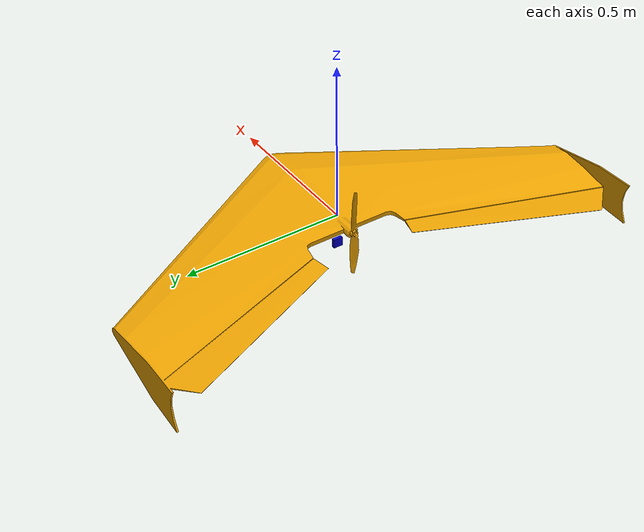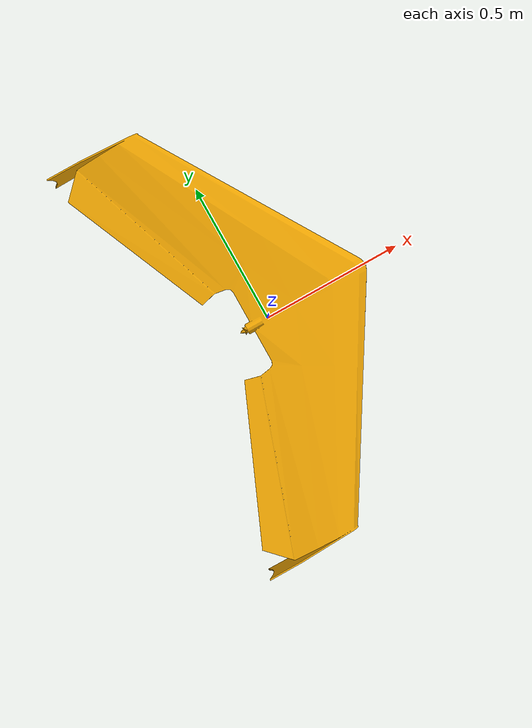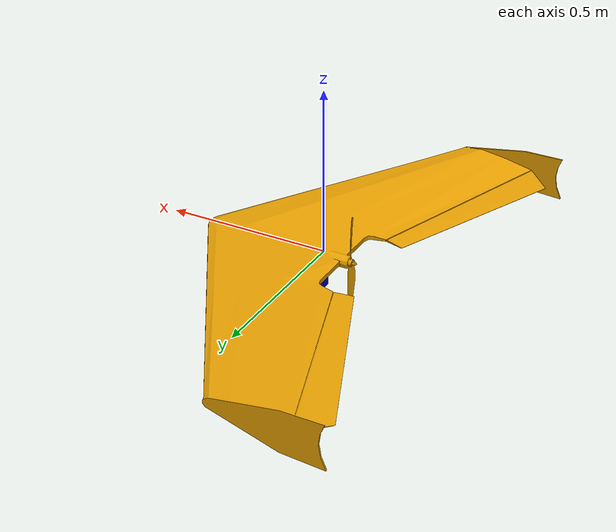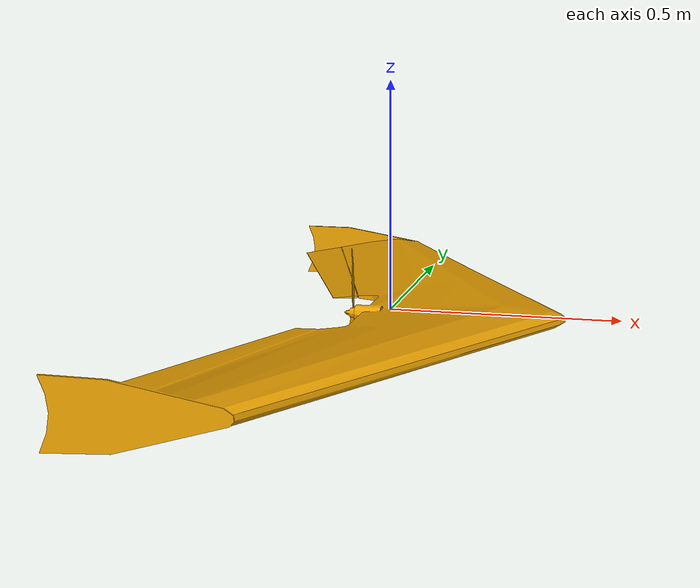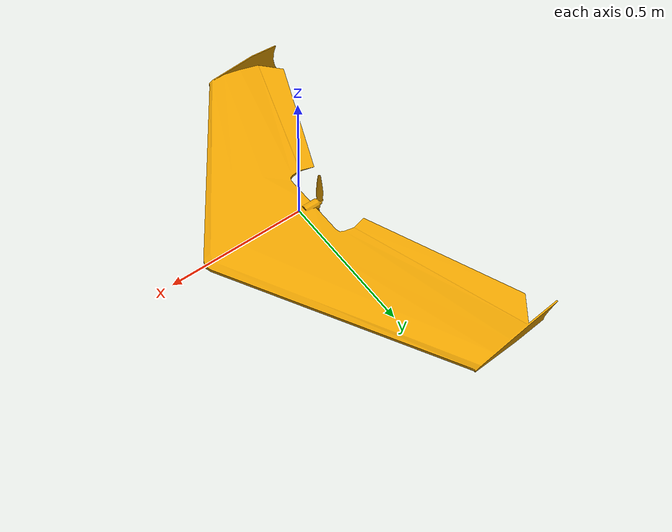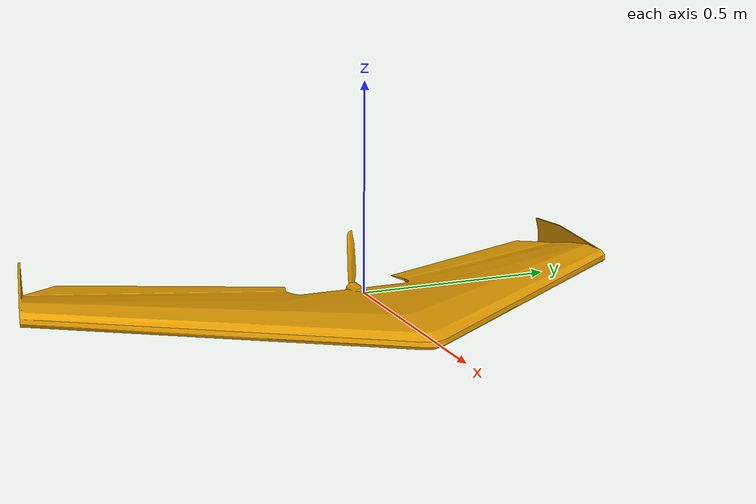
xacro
<?xml version="1.0"?>

<robot name="fixedwing" xmlns:xacro="http://www.ros.org/wiki/xacro">
  <!-- Properties -->
  <xacro:property name="wind_speed_topic" value="gazebo/wind_speed"/>
  <xacro:property name="command_topic" value="command"/>
  <xacro:property name="mesh_file" value="package://dist_project/urdf/meshes/fixedwing.dae"/>
  <xacro:property name="body_width" value="1.54"/>
  <xacro:property name="body_height" value="0.77" />
  <xacro:property name="body_length" value="0.20"/>
  <xacro:property name="mass" value="1.5"/>
  <xacro:property name="Jx" value="0.1147"/>
  <xacro:property name="Jy" value="0.0576"/>
  <xacro:property name="Jz" value="0.1712"/>
  <xacro:property name="Jxz" value="0.0015"/>

  <material name="Blue">
    <color rgba="0.0 0.0 0.8 1.0"/>
  </material>

  <xacro:property name="M_PI" value="3.1415926535897931" />

  <!-- Property Blocks -->
  <xacro:property name="empty_inertia">
    <inertia ixx="0.0001" ixy="0.0" ixz="0.0" iyy="0.0001" iyz="0.0" izz="0.001" />
  </xacro:property>

  <!-- Instantiate Link and Visual -->
  <link name="base_link">
    <inertial>
      <mass value="${mass}" />
      <origin xyz="0 0 0" />
      <inertia ixx="${Jx}" ixy="0.00" ixz="${Jxz}" iyy="${Jy}" iyz="0.00" izz="${Jz}" />
    </inertial>
    <visual name="plane_visual">
      <origin xyz="0 0 0" rpy="0 0 1.570796" />
      <geometry>
        <mesh filename="${mesh_file}">
            <submesh name="Wing" center="true" />
        </mesh>
      </geometry>
    </visual>
    <collision name="plane_collision">
      <origin xyz="0 0 0" rpy="0 0 1.570796" />
      <geometry>
        <box size="${body_width} ${body_height} ${body_length}" />
      </geometry>
    </collision>
  </link>

  <gazebo>
    <plugin name="vertical_lift" filename="libgazebo_ros_force.so">
      <bodyName>base_link</bodyName>
      <force>0 0 0</force>
      <topicName>vertical_lift_force</topicName>
    </plugin>
  </gazebo>

    <!-- GPS -->
  <xacro:include filename="$(find dist_project)/urdf/GPS.xacro"/>
  <xacro:gps_plugin_macro
    parent_link="base_link">
  </xacro:gps_plugin_macro>

  <!-- CAMERA DEFINITION -->

<link name="camera_link">
    <visual>
        <origin xyz="0 0 0" rpy="0 0 0" />
        <geometry>
            <box size="0.01 0.03 0.03" />
        </geometry>
        <material name="Blue" />
    </visual>
</link>

<joint name="camera_optical_joint" type="fixed">
    <parent link="camera_link" />
    <child link="camera_optical_link" />
    <origin xyz="0 0 0" rpy="0 0 0" /> <!-- Adjusted to face down -->
</joint>

<link name="camera_optical_link"></link>

<joint name="camera_joint" type="fixed">
    <parent link="base_link"/>
    <child link="camera_link"/>
    <origin xyz="0 0 -0.1" rpy="0 0 0"/> <!-- Positioning below the drone base -->
</joint>

<gazebo reference="camera_link">
    <material>Gazebo/Blue</material>

    <sensor name="camera" type="camera">
        <pose> 0 0 0 0 ${M_PI/2} 0 </pose>
        <visualize>true</visualize>
        <update_rate>30</update_rate>
        <camera>
            <horizontal_fov>2</horizontal_fov>
            <image>
                <format>R8G8B8</format>
                <width>640</width>
                <height>480</height>
            </image>
            <clip>
                <near>0.05</near>
                <far>8.00</far>
            </clip>
            <noise>
                <type>gaussian</type>
                <mean>0.0</mean>
                <stddev>0.07</stddev>
            </noise>
        </camera>
        <plugin name="camera_controller" filename="libgazebo_ros_camera.so">
            <frame_name>camera_optical_link</frame_name>
            <cameraName>camera</cameraName>
        </plugin>
    </sensor>
</gazebo>

<link name="camera_tip_link">
    <visual>
        <origin xyz="0 0 0" rpy="0 0 0" />
        <geometry>
            <box size="0.004 0.01 0.01" />
        </geometry>
        <material name="Blue" />
    </visual>
</link>

<joint name="camera_tip_joint" type="fixed">
    <parent link="camera_link"/>
    <child link="camera_tip_link"/>
    <origin xyz="${0.005+0.002} 0 0" rpy="0 0 0"/>
</joint>

<gazebo reference="camera_tip_link">
    <turnGravityOff>false</turnGravityOff>
    <material>Gazebo/Blue</material>
</gazebo>

    <!-- Sonar -->
  <xacro:include filename="$(find dist_project)/urdf/sonar.xacro"/>
  <xacro:sonar_plugin_macro
    parent_link="base_link"
    sonar_topic="sonar"
    namespace=""
    mass="0.0043"
    min_range="0.381"
    max_range="6.45"
    noise="0.10"
    resolution="0.10"
    field_of_view="1.107"
    update_rate="4">
  <origin />  <inertia />
  </xacro:sonar_plugin_macro>

<!-- IMU -->
  <xacro:include filename="$(find dist_project)/urdf/imu.xacro"/>
  <xacro:imu_plugin_macro
    parent_link="base_link">
  </xacro:imu_plugin_macro>

  <!-- CAMERA DEFINITION -->

</robot>

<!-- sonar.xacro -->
<robot xmlns:xacro="http://www.ros.org/wiki/xacro">

  <!-- LV-MaxSonar-EZ3 MB1030 -->
  <xacro:macro
    name="Sonar_MB1030"
    params="parent_link">
    <!-- params="namespace parent_link *origin"> -->
    <xacro:sonar_plugin_macro
      namespace=""
      parent_link="${parent_link}"
      mass="0.0043"
      min_range="0.381"
      max_range="6.45"
      noise="0.10"
      resolution="0.10"
      field_of_view="1.107"
      update_rate="40">
      <inertia ixx="0.00001" ixy="0.0" ixz="0.0" iyy="0.00001" iyz="0.0" izz="0.00001" />
      <origin xyz="0 0 0"/>
    </xacro:sonar_plugin_macro>
  </xacro:macro>

  <!-- Macro to add an sonar. -->
  <xacro:macro
    name="sonar_plugin_macro"
    params="
      namespace
      parent_link
      sonar_topic
      mass
      min_range
      max_range
      resolution
      noise
      field_of_view
      update_rate
      *inertia
      *origin
      ">

    <!-- sonar link -->
    <link name="sonar_link">
      <inertial>
        <mass value="${mass}"/>
        <xacro:insert_block name="origin"/>
        <xacro:insert_block name="inertia"/>
      </inertial>
    </link>

    <!-- sonar joint -->
    <joint name="sonar_joint" type="fixed">
      <origin xyz="0 0 0" rpy="0 1.5708 0"/> <parent link="base_link"/>
      <child link="sonar_link"/>
      <limit upper="0" lower="0" effort="0" velocity="0"/>
    </joint>

    <!-- attach a sonar -->
    <gazebo reference="sonar_link">
      <sensor type="ray" name="sonar">
        <ray>
          <scan>
            <horizontal>
              <samples>10</samples>
              <resolution>${resolution}</resolution>
              <min_angle>${-field_of_view / 2.0}</min_angle>
              <max_angle>${field_of_view / 2.0}</max_angle>
            </horizontal>
            <vertical>
              <samples>10</samples>
              <resolution>${resolution}</resolution>
              <min_angle>${-field_of_view / 2.0}</min_angle>
              <max_angle>${field_of_view / 2.0}</max_angle>
            </vertical>
          </scan>
          <range>
            <min>${min_range}</min>
            <max>${max_range}</max>
            <resolution>${resolution}</resolution>
          </range>
        </ray>

        <!-- load range plugin -->
        <plugin filename="libhector_gazebo_ros_sonar.so" name="sonar">
          <gaussianNoise>${noise}</gaussianNoise>
          <updateRate>${update_rate}</updateRate>
          <topicName>sonar</topicName>
          <frameName>/sonar_link</frameName>
          <fov>${field_of_view}</fov>
          <radiation>ultrasound</radiation>
        </plugin>
      </sensor>
    </gazebo>

  </xacro:macro>

</robot>
